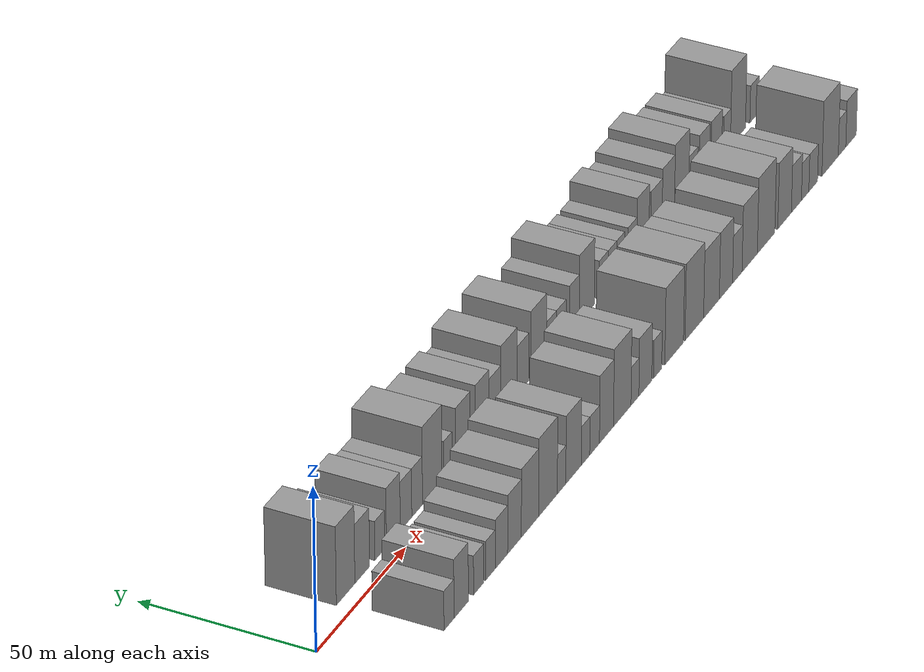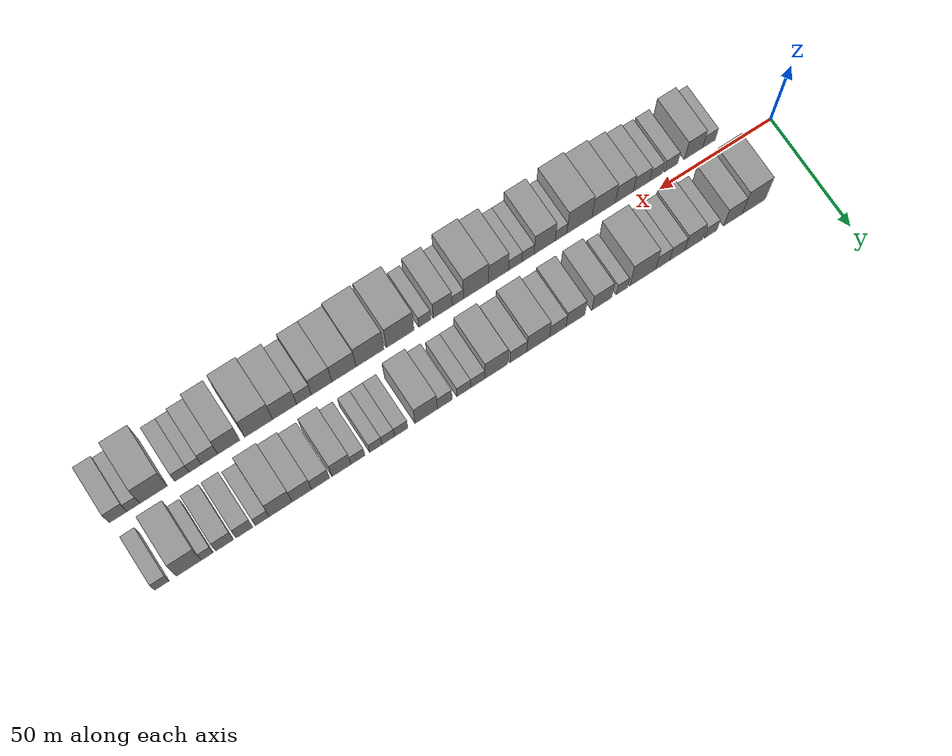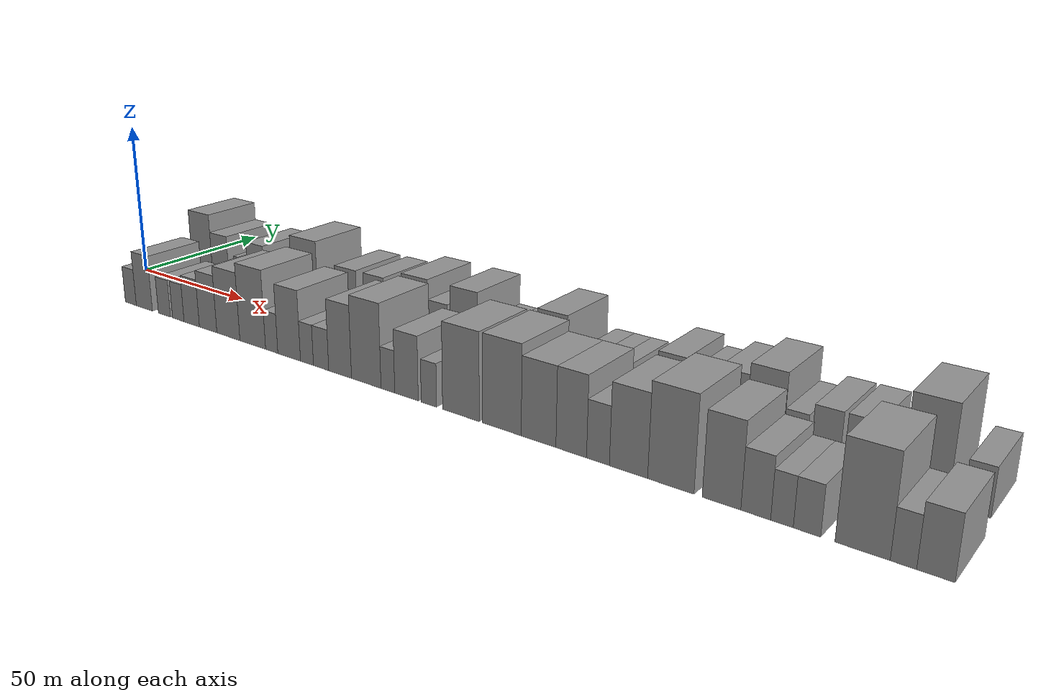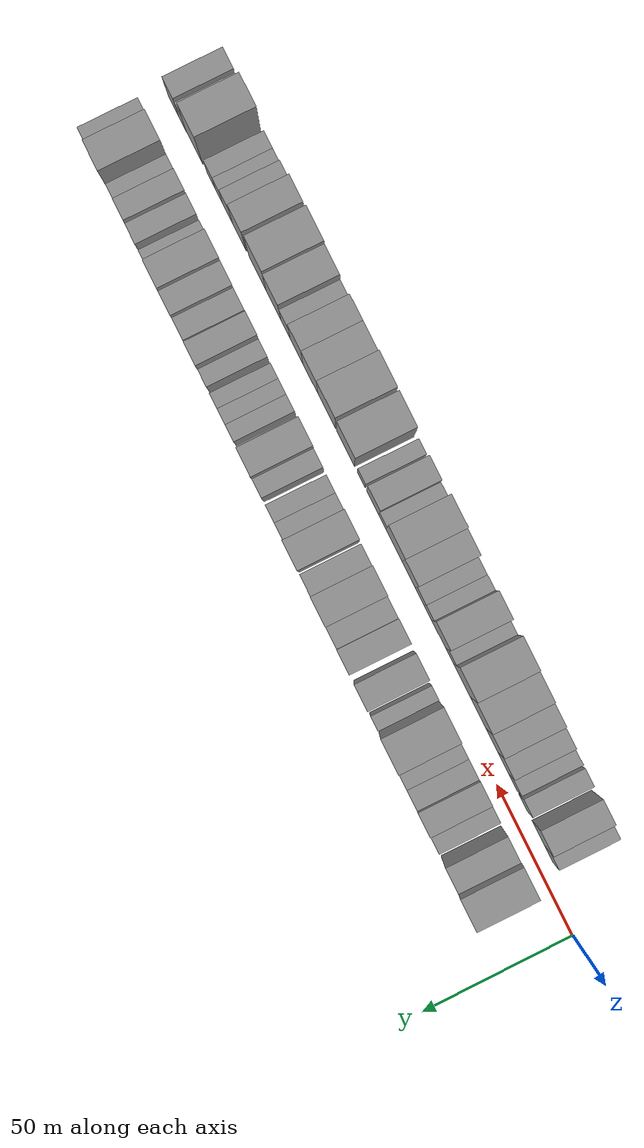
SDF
<sdf version="1.6">
 <world name="default">
  <scene>
   <sky><clouds><speed>12</speed></clouds></sky>
   <ambient>0.4 0.4 0.4 1</ambient>
   <background>0.7 0.7 0.7 1</background>
   <shadows>1</shadows>
  </scene>
  <gravity>0 0 -9.8066</gravity>
  <magnetic_field>6e-06 2.3e-05 -4.2e-05</magnetic_field>
  <physics default="0" name="default_physics" type="ode">
   <ode>
    <solver>
     <type>quick</type>
     <iters>10</iters>
     <sor>1.0</sor>
     <use_dynamic_moi_rescaling>0</use_dynamic_moi_rescaling>
    </solver>
    <constraints>
     <cfm>0</cfm>
     <erp>0.2</erp>
     <contact_max_correcting_vel>100</contact_max_correcting_vel>
     <contact_surface_layer>0.001</contact_surface_layer>
    </constraints>
   </ode>
   <max_step_size>0.004</max_step_size>
   <real_time_factor>1</real_time_factor>
   <real_time_update_rate>250</real_time_update_rate>
  </physics>
  <light name="sun" type="directional">
   <pose>0 0 10 0 0 0</pose>
   <diffuse>0.8 0.8 0.8 1</diffuse>
   <specular>0.2 0.2 0.2 1</specular>
   <attenuation>
    <range>1000</range>
    <constant>0.9</constant>
    <linear>0.01</linear>
    <quadratic>0.001</quadratic>
   </attenuation>
   <direction>-0.5 0.1 -0.9</direction>
  </light>
  <model name="building_1">
   <static>1</static>
   <pose>25.1746 14.5000 0 0.000000 0.000000 1.570796</pose>
   <link name="link">
    <pose>0 0 12.00 0 0 0</pose>
    <collision name="collision"><geometry><box><size>20.0000 10.3492 24.0000</size></box></geometry></collision>
    <visual name="visual">
     <cast_shadows>0</cast_shadows>
     <geometry><box><size>20.0000 10.3492 24.0000</size></box></geometry>
     <material>
      <script>
       <uri>model://grey_wall/materials/scripts</uri>
       <uri>model://grey_wall/materials/textures</uri>
       <name>vrc/grey_wall</name>
      </script>
     </material>
    </visual>
   </link>
  </model>
  <model name="building_2">
   <static>1</static>
   <pose>34.4824 14.5000 0 0.000000 0.000000 1.570796</pose>
   <link name="link">
    <pose>0 0 9.00 0 0 0</pose>
    <collision name="collision"><geometry><box><size>20.0000 8.2664 18.0000</size></box></geometry></collision>
    <visual name="visual">
     <cast_shadows>0</cast_shadows>
     <geometry><box><size>20.0000 8.2664 18.0000</size></box></geometry>
     <material>
      <script>
       <uri>model://grey_wall/materials/scripts</uri>
       <uri>model://grey_wall/materials/textures</uri>
       <name>vrc/grey_wall</name>
      </script>
     </material>
    </visual>
   </link>
  </model>
  <model name="building_3">
   <static>1</static>
   <pose>44.3704 14.5000 0 0.000000 0.000000 1.570796</pose>
   <link name="link">
    <pose>0 0 6.00 0 0 0</pose>
    <collision name="collision"><geometry><box><size>20.0000 5.5097 12.0000</size></box></geometry></collision>
    <visual name="visual">
     <cast_shadows>0</cast_shadows>
     <geometry><box><size>20.0000 5.5097 12.0000</size></box></geometry>
     <material>
      <script>
       <uri>model://grey_wall/materials/scripts</uri>
       <uri>model://grey_wall/materials/textures</uri>
       <name>vrc/grey_wall</name>
      </script>
     </material>
    </visual>
   </link>
  </model>
  <model name="building_4">
   <static>1</static>
   <pose>52.0816 14.5000 0 0.000000 0.000000 1.570796</pose>
   <link name="link">
    <pose>0 0 9.00 0 0 0</pose>
    <collision name="collision"><geometry><box><size>20.0000 7.9126 18.0000</size></box></geometry></collision>
    <visual name="visual">
     <cast_shadows>0</cast_shadows>
     <geometry><box><size>20.0000 7.9126 18.0000</size></box></geometry>
     <material>
      <script>
       <uri>model://grey_wall/materials/scripts</uri>
       <uri>model://grey_wall/materials/textures</uri>
       <name>vrc/grey_wall</name>
      </script>
     </material>
    </visual>
   </link>
  </model>
  <model name="building_5">
   <static>1</static>
   <pose>59.3654 14.5000 0 0.000000 0.000000 1.570796</pose>
   <link name="link">
    <pose>0 0 7.50 0 0 0</pose>
    <collision name="collision"><geometry><box><size>20.0000 6.6549 15.0000</size></box></geometry></collision>
    <visual name="visual">
     <cast_shadows>0</cast_shadows>
     <geometry><box><size>20.0000 6.6549 15.0000</size></box></geometry>
     <material>
      <script>
       <uri>model://grey_wall/materials/scripts</uri>
       <uri>model://grey_wall/materials/textures</uri>
       <name>vrc/grey_wall</name>
      </script>
     </material>
    </visual>
   </link>
  </model>
  <model name="building_6">
   <static>1</static>
   <pose>65.7682 14.5000 0 0.000000 0.000000 1.570796</pose>
   <link name="link">
    <pose>0 0 7.50 0 0 0</pose>
    <collision name="collision"><geometry><box><size>20.0000 6.1507 15.0000</size></box></geometry></collision>
    <visual name="visual">
     <cast_shadows>0</cast_shadows>
     <geometry><box><size>20.0000 6.1507 15.0000</size></box></geometry>
     <material>
      <script>
       <uri>model://grey_wall/materials/scripts</uri>
       <uri>model://grey_wall/materials/textures</uri>
       <name>vrc/grey_wall</name>
      </script>
     </material>
    </visual>
   </link>
  </model>
  <model name="building_7">
   <static>1</static>
   <pose>74.5268 14.5000 0 0.000000 0.000000 1.570796</pose>
   <link name="link">
    <pose>0 0 12.00 0 0 0</pose>
    <collision name="collision"><geometry><box><size>20.0000 11.3665 24.0000</size></box></geometry></collision>
    <visual name="visual">
     <cast_shadows>0</cast_shadows>
     <geometry><box><size>20.0000 11.3665 24.0000</size></box></geometry>
     <material>
      <script>
       <uri>model://grey_wall/materials/scripts</uri>
       <uri>model://grey_wall/materials/textures</uri>
       <name>vrc/grey_wall</name>
      </script>
     </material>
    </visual>
   </link>
  </model>
  <model name="building_8">
   <static>1</static>
   <pose>83.6589 14.5000 0 0.000000 0.000000 1.570796</pose>
   <link name="link">
    <pose>0 0 6.00 0 0 0</pose>
    <collision name="collision"><geometry><box><size>20.0000 4.8976 12.0000</size></box></geometry></collision>
    <visual name="visual">
     <cast_shadows>0</cast_shadows>
     <geometry><box><size>20.0000 4.8976 12.0000</size></box></geometry>
     <material>
      <script>
       <uri>model://grey_wall/materials/scripts</uri>
       <uri>model://grey_wall/materials/textures</uri>
       <name>vrc/grey_wall</name>
      </script>
     </material>
    </visual>
   </link>
  </model>
  <model name="building_9">
   <static>1</static>
   <pose>92.4639 14.5000 0 0.000000 0.000000 1.570796</pose>
   <link name="link">
    <pose>0 0 9.00 0 0 0</pose>
    <collision name="collision"><geometry><box><size>20.0000 8.7124 18.0000</size></box></geometry></collision>
    <visual name="visual">
     <cast_shadows>0</cast_shadows>
     <geometry><box><size>20.0000 8.7124 18.0000</size></box></geometry>
     <material>
      <script>
       <uri>model://grey_wall/materials/scripts</uri>
       <uri>model://grey_wall/materials/textures</uri>
       <name>vrc/grey_wall</name>
      </script>
     </material>
    </visual>
   </link>
  </model>
  <model name="building_10">
   <static>1</static>
   <pose>103.8794 14.5000 0 0.000000 0.000000 1.570796</pose>
   <link name="link">
    <pose>0 0 9.00 0 0 0</pose>
    <collision name="collision"><geometry><box><size>20.0000 8.1185 18.0000</size></box></geometry></collision>
    <visual name="visual">
     <cast_shadows>0</cast_shadows>
     <geometry><box><size>20.0000 8.1185 18.0000</size></box></geometry>
     <material>
      <script>
       <uri>model://grey_wall/materials/scripts</uri>
       <uri>model://grey_wall/materials/textures</uri>
       <name>vrc/grey_wall</name>
      </script>
     </material>
    </visual>
   </link>
  </model>
  <model name="building_11">
   <static>1</static>
   <pose>111.5253 14.5000 0 0.000000 0.000000 1.570796</pose>
   <link name="link">
    <pose>0 0 7.50 0 0 0</pose>
    <collision name="collision"><geometry><box><size>20.0000 7.1734 15.0000</size></box></geometry></collision>
    <visual name="visual">
     <cast_shadows>0</cast_shadows>
     <geometry><box><size>20.0000 7.1734 15.0000</size></box></geometry>
     <material>
      <script>
       <uri>model://grey_wall/materials/scripts</uri>
       <uri>model://grey_wall/materials/textures</uri>
       <name>vrc/grey_wall</name>
      </script>
     </material>
    </visual>
   </link>
  </model>
  <model name="building_12">
   <static>1</static>
   <pose>120.0198 14.5000 0 0.000000 0.000000 1.570796</pose>
   <link name="link">
    <pose>0 0 10.50 0 0 0</pose>
    <collision name="collision"><geometry><box><size>20.0000 9.8156 21.0000</size></box></geometry></collision>
    <visual name="visual">
     <cast_shadows>0</cast_shadows>
     <geometry><box><size>20.0000 9.8156 21.0000</size></box></geometry>
     <material>
      <script>
       <uri>model://grey_wall/materials/scripts</uri>
       <uri>model://grey_wall/materials/textures</uri>
       <name>vrc/grey_wall</name>
      </script>
     </material>
    </visual>
   </link>
  </model>
  <model name="building_13">
   <static>1</static>
   <pose>128.5343 14.5000 0 0.000000 0.000000 1.570796</pose>
   <link name="link">
    <pose>0 0 7.50 0 0 0</pose>
    <collision name="collision"><geometry><box><size>20.0000 7.2135 15.0000</size></box></geometry></collision>
    <visual name="visual">
     <cast_shadows>0</cast_shadows>
     <geometry><box><size>20.0000 7.2135 15.0000</size></box></geometry>
     <material>
      <script>
       <uri>model://grey_wall/materials/scripts</uri>
       <uri>model://grey_wall/materials/textures</uri>
       <name>vrc/grey_wall</name>
      </script>
     </material>
    </visual>
   </link>
  </model>
  <model name="building_14">
   <static>1</static>
   <pose>138.0408 14.5000 0 0.000000 0.000000 1.570796</pose>
   <link name="link">
    <pose>0 0 10.50 0 0 0</pose>
    <collision name="collision"><geometry><box><size>20.0000 9.7995 21.0000</size></box></geometry></collision>
    <visual name="visual">
     <cast_shadows>0</cast_shadows>
     <geometry><box><size>20.0000 9.7995 21.0000</size></box></geometry>
     <material>
      <script>
       <uri>model://grey_wall/materials/scripts</uri>
       <uri>model://grey_wall/materials/textures</uri>
       <name>vrc/grey_wall</name>
      </script>
     </material>
    </visual>
   </link>
  </model>
  <model name="building_15">
   <static>1</static>
   <pose>145.9293 14.5000 0 0.000000 0.000000 1.570796</pose>
   <link name="link">
    <pose>0 0 6.00 0 0 0</pose>
    <collision name="collision"><geometry><box><size>20.0000 5.9774 12.0000</size></box></geometry></collision>
    <visual name="visual">
     <cast_shadows>0</cast_shadows>
     <geometry><box><size>20.0000 5.9774 12.0000</size></box></geometry>
     <material>
      <script>
       <uri>model://grey_wall/materials/scripts</uri>
       <uri>model://grey_wall/materials/textures</uri>
       <name>vrc/grey_wall</name>
      </script>
     </material>
    </visual>
   </link>
  </model>
  <model name="building_16">
   <static>1</static>
   <pose>151.8795 14.5000 0 0.000000 0.000000 1.570796</pose>
   <link name="link">
    <pose>0 0 6.00 0 0 0</pose>
    <collision name="collision"><geometry><box><size>20.0000 5.9230 12.0000</size></box></geometry></collision>
    <visual name="visual">
     <cast_shadows>0</cast_shadows>
     <geometry><box><size>20.0000 5.9230 12.0000</size></box></geometry>
     <material>
      <script>
       <uri>model://grey_wall/materials/scripts</uri>
       <uri>model://grey_wall/materials/textures</uri>
       <name>vrc/grey_wall</name>
      </script>
     </material>
    </visual>
   </link>
  </model>
  <model name="building_17">
   <static>1</static>
   <pose>159.9639 14.5000 0 0.000000 0.000000 1.570796</pose>
   <link name="link">
    <pose>0 0 7.50 0 0 0</pose>
    <collision name="collision"><geometry><box><size>20.0000 6.2458 15.0000</size></box></geometry></collision>
    <visual name="visual">
     <cast_shadows>0</cast_shadows>
     <geometry><box><size>20.0000 6.2458 15.0000</size></box></geometry>
     <material>
      <script>
       <uri>model://grey_wall/materials/scripts</uri>
       <uri>model://grey_wall/materials/textures</uri>
       <name>vrc/grey_wall</name>
      </script>
     </material>
    </visual>
   </link>
  </model>
  <model name="building_18">
   <static>1</static>
   <pose>167.8384 14.5000 0 0.000000 0.000000 1.570796</pose>
   <link name="link">
    <pose>0 0 10.50 0 0 0</pose>
    <collision name="collision"><geometry><box><size>20.0000 9.5033 21.0000</size></box></geometry></collision>
    <visual name="visual">
     <cast_shadows>0</cast_shadows>
     <geometry><box><size>20.0000 9.5033 21.0000</size></box></geometry>
     <material>
      <script>
       <uri>model://grey_wall/materials/scripts</uri>
       <uri>model://grey_wall/materials/textures</uri>
       <name>vrc/grey_wall</name>
      </script>
     </material>
    </visual>
   </link>
  </model>
  <model name="building_19">
   <static>1</static>
   <pose>178.4240 14.5000 0 0.000000 0.000000 1.570796</pose>
   <link name="link">
    <pose>0 0 6.00 0 0 0</pose>
    <collision name="collision"><geometry><box><size>20.0000 5.6677 12.0000</size></box></geometry></collision>
    <visual name="visual">
     <cast_shadows>0</cast_shadows>
     <geometry><box><size>20.0000 5.6677 12.0000</size></box></geometry>
     <material>
      <script>
       <uri>model://grey_wall/materials/scripts</uri>
       <uri>model://grey_wall/materials/textures</uri>
       <name>vrc/grey_wall</name>
      </script>
     </material>
    </visual>
   </link>
  </model>
  <model name="building_20">
   <static>1</static>
   <pose>183.8757 14.5000 0 0.000000 0.000000 1.570796</pose>
   <link name="link">
    <pose>0 0 6.00 0 0 0</pose>
    <collision name="collision"><geometry><box><size>20.0000 5.2357 12.0000</size></box></geometry></collision>
    <visual name="visual">
     <cast_shadows>0</cast_shadows>
     <geometry><box><size>20.0000 5.2357 12.0000</size></box></geometry>
     <material>
      <script>
       <uri>model://grey_wall/materials/scripts</uri>
       <uri>model://grey_wall/materials/textures</uri>
       <name>vrc/grey_wall</name>
      </script>
     </material>
    </visual>
   </link>
  </model>
  <model name="building_21">
   <static>1</static>
   <pose>189.0594 14.5000 0 0.000000 0.000000 1.570796</pose>
   <link name="link">
    <pose>0 0 6.00 0 0 0</pose>
    <collision name="collision"><geometry><box><size>20.0000 5.1316 12.0000</size></box></geometry></collision>
    <visual name="visual">
     <cast_shadows>0</cast_shadows>
     <geometry><box><size>20.0000 5.1316 12.0000</size></box></geometry>
     <material>
      <script>
       <uri>model://grey_wall/materials/scripts</uri>
       <uri>model://grey_wall/materials/textures</uri>
       <name>vrc/grey_wall</name>
      </script>
     </material>
    </visual>
   </link>
  </model>
  <model name="building_22">
   <static>1</static>
   <pose>196.5684 14.5000 0 0.000000 0.000000 1.570796</pose>
   <link name="link">
    <pose>0 0 6.00 0 0 0</pose>
    <collision name="collision"><geometry><box><size>20.0000 5.8866 12.0000</size></box></geometry></collision>
    <visual name="visual">
     <cast_shadows>0</cast_shadows>
     <geometry><box><size>20.0000 5.8866 12.0000</size></box></geometry>
     <material>
      <script>
       <uri>model://grey_wall/materials/scripts</uri>
       <uri>model://grey_wall/materials/textures</uri>
       <name>vrc/grey_wall</name>
      </script>
     </material>
    </visual>
   </link>
  </model>
  <model name="building_23">
   <static>1</static>
   <pose>203.4384 14.5000 0 0.000000 0.000000 1.570796</pose>
   <link name="link">
    <pose>0 0 9.00 0 0 0</pose>
    <collision name="collision"><geometry><box><size>20.0000 7.8533 18.0000</size></box></geometry></collision>
    <visual name="visual">
     <cast_shadows>0</cast_shadows>
     <geometry><box><size>20.0000 7.8533 18.0000</size></box></geometry>
     <material>
      <script>
       <uri>model://grey_wall/materials/scripts</uri>
       <uri>model://grey_wall/materials/textures</uri>
       <name>vrc/grey_wall</name>
      </script>
     </material>
    </visual>
   </link>
  </model>
  <model name="building_24">
   <static>1</static>
   <pose>212.0950 14.5000 0 0.000000 0.000000 1.570796</pose>
   <link name="link">
    <pose>0 0 7.50 0 0 0</pose>
    <collision name="collision"><geometry><box><size>20.0000 7.4600 15.0000</size></box></geometry></collision>
    <visual name="visual">
     <cast_shadows>0</cast_shadows>
     <geometry><box><size>20.0000 7.4600 15.0000</size></box></geometry>
     <material>
      <script>
       <uri>model://grey_wall/materials/scripts</uri>
       <uri>model://grey_wall/materials/textures</uri>
       <name>vrc/grey_wall</name>
      </script>
     </material>
    </visual>
   </link>
  </model>
  <model name="building_25">
   <static>1</static>
   <pose>219.8678 14.5000 0 0.000000 0.000000 1.570796</pose>
   <link name="link">
    <pose>0 0 9.00 0 0 0</pose>
    <collision name="collision"><geometry><box><size>20.0000 8.0856 18.0000</size></box></geometry></collision>
    <visual name="visual">
     <cast_shadows>0</cast_shadows>
     <geometry><box><size>20.0000 8.0856 18.0000</size></box></geometry>
     <material>
      <script>
       <uri>model://grey_wall/materials/scripts</uri>
       <uri>model://grey_wall/materials/textures</uri>
       <name>vrc/grey_wall</name>
      </script>
     </material>
    </visual>
   </link>
  </model>
  <model name="building_26">
   <static>1</static>
   <pose>228.6198 14.5000 0 0.000000 0.000000 1.570796</pose>
   <link name="link">
    <pose>0 0 10.50 0 0 0</pose>
    <collision name="collision"><geometry><box><size>20.0000 9.4183 21.0000</size></box></geometry></collision>
    <visual name="visual">
     <cast_shadows>0</cast_shadows>
     <geometry><box><size>20.0000 9.4183 21.0000</size></box></geometry>
     <material>
      <script>
       <uri>model://grey_wall/materials/scripts</uri>
       <uri>model://grey_wall/materials/textures</uri>
       <name>vrc/grey_wall</name>
      </script>
     </material>
    </visual>
   </link>
  </model>
  <model name="building_27">
   <static>1</static>
   <pose>236.1956 14.5000 0 0.000000 0.000000 1.570796</pose>
   <link name="link">
    <pose>0 0 6.00 0 0 0</pose>
    <collision name="collision"><geometry><box><size>20.0000 5.7333 12.0000</size></box></geometry></collision>
    <visual name="visual">
     <cast_shadows>0</cast_shadows>
     <geometry><box><size>20.0000 5.7333 12.0000</size></box></geometry>
     <material>
      <script>
       <uri>model://grey_wall/materials/scripts</uri>
       <uri>model://grey_wall/materials/textures</uri>
       <name>vrc/grey_wall</name>
      </script>
     </material>
    </visual>
   </link>
  </model>
  <model name="building_28">
   <static>1</static>
   <pose>243.5066 14.5000 0 0.000000 0.000000 1.570796</pose>
   <link name="link">
    <pose>0 0 7.50 0 0 0</pose>
    <collision name="collision"><geometry><box><size>20.0000 6.8887 15.0000</size></box></geometry></collision>
    <visual name="visual">
     <cast_shadows>0</cast_shadows>
     <geometry><box><size>20.0000 6.8887 15.0000</size></box></geometry>
     <material>
      <script>
       <uri>model://grey_wall/materials/scripts</uri>
       <uri>model://grey_wall/materials/textures</uri>
       <name>vrc/grey_wall</name>
      </script>
     </material>
    </visual>
   </link>
  </model>
  <model name="building_29">
   <static>1</static>
   <pose>251.5975 14.5000 0 0.000000 0.000000 1.570796</pose>
   <link name="link">
    <pose>0 0 7.50 0 0 0</pose>
    <collision name="collision"><geometry><box><size>20.0000 7.2932 15.0000</size></box></geometry></collision>
    <visual name="visual">
     <cast_shadows>0</cast_shadows>
     <geometry><box><size>20.0000 7.2932 15.0000</size></box></geometry>
     <material>
      <script>
       <uri>model://grey_wall/materials/scripts</uri>
       <uri>model://grey_wall/materials/textures</uri>
       <name>vrc/grey_wall</name>
      </script>
     </material>
    </visual>
   </link>
  </model>
  <model name="building_30">
   <static>1</static>
   <pose>258.6522 14.5000 0 0.000000 0.000000 1.570796</pose>
   <link name="link">
    <pose>0 0 6.00 0 0 0</pose>
    <collision name="collision"><geometry><box><size>20.0000 4.8161 12.0000</size></box></geometry></collision>
    <visual name="visual">
     <cast_shadows>0</cast_shadows>
     <geometry><box><size>20.0000 4.8161 12.0000</size></box></geometry>
     <material>
      <script>
       <uri>model://grey_wall/materials/scripts</uri>
       <uri>model://grey_wall/materials/textures</uri>
       <name>vrc/grey_wall</name>
      </script>
     </material>
    </visual>
   </link>
  </model>
  <model name="building_31">
   <static>1</static>
   <pose>266.1332 14.5000 0 0.000000 0.000000 1.570796</pose>
   <link name="link">
    <pose>0 0 12.00 0 0 0</pose>
    <collision name="collision"><geometry><box><size>20.0000 10.1458 24.0000</size></box></geometry></collision>
    <visual name="visual">
     <cast_shadows>0</cast_shadows>
     <geometry><box><size>20.0000 10.1458 24.0000</size></box></geometry>
     <material>
      <script>
       <uri>model://grey_wall/materials/scripts</uri>
       <uri>model://grey_wall/materials/textures</uri>
       <name>vrc/grey_wall</name>
      </script>
     </material>
    </visual>
   </link>
  </model>
  <model name="building_32">
   <static>1</static>
   <pose>277.1185 14.5000 0 0.000000 0.000000 1.570796</pose>
   <link name="link">
    <pose>0 0 6.00 0 0 0</pose>
    <collision name="collision"><geometry><box><size>20.0000 5.8248 12.0000</size></box></geometry></collision>
    <visual name="visual">
     <cast_shadows>0</cast_shadows>
     <geometry><box><size>20.0000 5.8248 12.0000</size></box></geometry>
     <material>
      <script>
       <uri>model://grey_wall/materials/scripts</uri>
       <uri>model://grey_wall/materials/textures</uri>
       <name>vrc/grey_wall</name>
      </script>
     </material>
    </visual>
   </link>
  </model>
  <model name="building_33">
   <static>1</static>
   <pose>24.8295 -14.5000 0 0.000000 0.000000 1.570796</pose>
   <link name="link">
    <pose>0 0 6.00 0 0 0</pose>
    <collision name="collision"><geometry><box><size>20.0000 5.6591 12.0000</size></box></geometry></collision>
    <visual name="visual">
     <cast_shadows>0</cast_shadows>
     <geometry><box><size>20.0000 5.6591 12.0000</size></box></geometry>
     <material>
      <script>
       <uri>model://grey_wall/materials/scripts</uri>
       <uri>model://grey_wall/materials/textures</uri>
       <name>vrc/grey_wall</name>
      </script>
     </material>
    </visual>
   </link>
  </model>
  <model name="building_34">
   <static>1</static>
   <pose>31.7706 -14.5000 0 0.000000 0.000000 1.570796</pose>
   <link name="link">
    <pose>0 0 9.00 0 0 0</pose>
    <collision name="collision"><geometry><box><size>20.0000 8.2231 18.0000</size></box></geometry></collision>
    <visual name="visual">
     <cast_shadows>0</cast_shadows>
     <geometry><box><size>20.0000 8.2231 18.0000</size></box></geometry>
     <material>
      <script>
       <uri>model://grey_wall/materials/scripts</uri>
       <uri>model://grey_wall/materials/textures</uri>
       <name>vrc/grey_wall</name>
      </script>
     </material>
    </visual>
   </link>
  </model>
  <model name="building_35">
   <static>1</static>
   <pose>41.8586 -14.5000 0 0.000000 0.000000 1.570796</pose>
   <link name="link">
    <pose>0 0 6.00 0 0 0</pose>
    <collision name="collision"><geometry><box><size>20.0000 5.9528 12.0000</size></box></geometry></collision>
    <visual name="visual">
     <cast_shadows>0</cast_shadows>
     <geometry><box><size>20.0000 5.9528 12.0000</size></box></geometry>
     <material>
      <script>
       <uri>model://grey_wall/materials/scripts</uri>
       <uri>model://grey_wall/materials/textures</uri>
       <name>vrc/grey_wall</name>
      </script>
     </material>
    </visual>
   </link>
  </model>
  <model name="building_36">
   <static>1</static>
   <pose>48.6147 -14.5000 0 0.000000 0.000000 1.570796</pose>
   <link name="link">
    <pose>0 0 6.00 0 0 0</pose>
    <collision name="collision"><geometry><box><size>20.0000 5.5594 12.0000</size></box></geometry></collision>
    <visual name="visual">
     <cast_shadows>0</cast_shadows>
     <geometry><box><size>20.0000 5.5594 12.0000</size></box></geometry>
     <material>
      <script>
       <uri>model://grey_wall/materials/scripts</uri>
       <uri>model://grey_wall/materials/textures</uri>
       <name>vrc/grey_wall</name>
      </script>
     </material>
    </visual>
   </link>
  </model>
  <model name="building_37">
   <static>1</static>
   <pose>55.0255 -14.5000 0 0.000000 0.000000 1.570796</pose>
   <link name="link">
    <pose>0 0 7.50 0 0 0</pose>
    <collision name="collision"><geometry><box><size>20.0000 7.2622 15.0000</size></box></geometry></collision>
    <visual name="visual">
     <cast_shadows>0</cast_shadows>
     <geometry><box><size>20.0000 7.2622 15.0000</size></box></geometry>
     <material>
      <script>
       <uri>model://grey_wall/materials/scripts</uri>
       <uri>model://grey_wall/materials/textures</uri>
       <name>vrc/grey_wall</name>
      </script>
     </material>
    </visual>
   </link>
  </model>
  <model name="building_38">
   <static>1</static>
   <pose>62.6842 -14.5000 0 0.000000 0.000000 1.570796</pose>
   <link name="link">
    <pose>0 0 9.00 0 0 0</pose>
    <collision name="collision"><geometry><box><size>20.0000 8.0551 18.0000</size></box></geometry></collision>
    <visual name="visual">
     <cast_shadows>0</cast_shadows>
     <geometry><box><size>20.0000 8.0551 18.0000</size></box></geometry>
     <material>
      <script>
       <uri>model://grey_wall/materials/scripts</uri>
       <uri>model://grey_wall/materials/textures</uri>
       <name>vrc/grey_wall</name>
      </script>
     </material>
    </visual>
   </link>
  </model>
  <model name="building_39">
   <static>1</static>
   <pose>71.8585 -14.5000 0 0.000000 0.000000 1.570796</pose>
   <link name="link">
    <pose>0 0 10.50 0 0 0</pose>
    <collision name="collision"><geometry><box><size>20.0000 10.2935 21.0000</size></box></geometry></collision>
    <visual name="visual">
     <cast_shadows>0</cast_shadows>
     <geometry><box><size>20.0000 10.2935 21.0000</size></box></geometry>
     <material>
      <script>
       <uri>model://grey_wall/materials/scripts</uri>
       <uri>model://grey_wall/materials/textures</uri>
       <name>vrc/grey_wall</name>
      </script>
     </material>
    </visual>
   </link>
  </model>
  <model name="building_40">
   <static>1</static>
   <pose>82.5475 -14.5000 0 0.000000 0.000000 1.570796</pose>
   <link name="link">
    <pose>0 0 12.00 0 0 0</pose>
    <collision name="collision"><geometry><box><size>20.0000 11.0843 24.0000</size></box></geometry></collision>
    <visual name="visual">
     <cast_shadows>0</cast_shadows>
     <geometry><box><size>20.0000 11.0843 24.0000</size></box></geometry>
     <material>
      <script>
       <uri>model://grey_wall/materials/scripts</uri>
       <uri>model://grey_wall/materials/textures</uri>
       <name>vrc/grey_wall</name>
      </script>
     </material>
    </visual>
   </link>
  </model>
  <model name="building_41">
   <static>1</static>
   <pose>90.6460 -14.5000 0 0.000000 0.000000 1.570796</pose>
   <link name="link">
    <pose>0 0 6.00 0 0 0</pose>
    <collision name="collision"><geometry><box><size>20.0000 5.1128 12.0000</size></box></geometry></collision>
    <visual name="visual">
     <cast_shadows>0</cast_shadows>
     <geometry><box><size>20.0000 5.1128 12.0000</size></box></geometry>
     <material>
      <script>
       <uri>model://grey_wall/materials/scripts</uri>
       <uri>model://grey_wall/materials/textures</uri>
       <name>vrc/grey_wall</name>
      </script>
     </material>
    </visual>
   </link>
  </model>
  <model name="building_42">
   <static>1</static>
   <pose>97.8314 -14.5000 0 0.000000 0.000000 1.570796</pose>
   <link name="link">
    <pose>0 0 10.50 0 0 0</pose>
    <collision name="collision"><geometry><box><size>20.0000 9.2579 21.0000</size></box></geometry></collision>
    <visual name="visual">
     <cast_shadows>0</cast_shadows>
     <geometry><box><size>20.0000 9.2579 21.0000</size></box></geometry>
     <material>
      <script>
       <uri>model://grey_wall/materials/scripts</uri>
       <uri>model://grey_wall/materials/textures</uri>
       <name>vrc/grey_wall</name>
      </script>
     </material>
    </visual>
   </link>
  </model>
  <model name="building_43">
   <static>1</static>
   <pose>105.0387 -14.5000 0 0.000000 0.000000 1.570796</pose>
   <link name="link">
    <pose>0 0 6.00 0 0 0</pose>
    <collision name="collision"><geometry><box><size>20.0000 5.1569 12.0000</size></box></geometry></collision>
    <visual name="visual">
     <cast_shadows>0</cast_shadows>
     <geometry><box><size>20.0000 5.1569 12.0000</size></box></geometry>
     <material>
      <script>
       <uri>model://grey_wall/materials/scripts</uri>
       <uri>model://grey_wall/materials/textures</uri>
       <name>vrc/grey_wall</name>
      </script>
     </material>
    </visual>
   </link>
  </model>
  <model name="building_44">
   <static>1</static>
   <pose>110.5969 -14.5000 0 0.000000 0.000000 1.570796</pose>
   <link name="link">
    <pose>0 0 6.00 0 0 0</pose>
    <collision name="collision"><geometry><box><size>20.0000 5.9595 12.0000</size></box></geometry></collision>
    <visual name="visual">
     <cast_shadows>0</cast_shadows>
     <geometry><box><size>20.0000 5.9595 12.0000</size></box></geometry>
     <material>
      <script>
       <uri>model://grey_wall/materials/scripts</uri>
       <uri>model://grey_wall/materials/textures</uri>
       <name>vrc/grey_wall</name>
      </script>
     </material>
    </visual>
   </link>
  </model>
  <model name="building_45">
   <static>1</static>
   <pose>117.9034 -14.5000 0 0.000000 0.000000 1.570796</pose>
   <link name="link">
    <pose>0 0 10.50 0 0 0</pose>
    <collision name="collision"><geometry><box><size>20.0000 8.6535 21.0000</size></box></geometry></collision>
    <visual name="visual">
     <cast_shadows>0</cast_shadows>
     <geometry><box><size>20.0000 8.6535 21.0000</size></box></geometry>
     <material>
      <script>
       <uri>model://grey_wall/materials/scripts</uri>
       <uri>model://grey_wall/materials/textures</uri>
       <name>vrc/grey_wall</name>
      </script>
     </material>
    </visual>
   </link>
  </model>
  <model name="building_46">
   <static>1</static>
   <pose>127.6342 -14.5000 0 0.000000 0.000000 1.570796</pose>
   <link name="link">
    <pose>0 0 12.00 0 0 0</pose>
    <collision name="collision"><geometry><box><size>20.0000 10.8082 24.0000</size></box></geometry></collision>
    <visual name="visual">
     <cast_shadows>0</cast_shadows>
     <geometry><box><size>20.0000 10.8082 24.0000</size></box></geometry>
     <material>
      <script>
       <uri>model://grey_wall/materials/scripts</uri>
       <uri>model://grey_wall/materials/textures</uri>
       <name>vrc/grey_wall</name>
      </script>
     </material>
    </visual>
   </link>
  </model>
  <model name="building_47">
   <static>1</static>
   <pose>135.4811 -14.5000 0 0.000000 0.000000 1.570796</pose>
   <link name="link">
    <pose>0 0 6.00 0 0 0</pose>
    <collision name="collision"><geometry><box><size>20.0000 4.8857 12.0000</size></box></geometry></collision>
    <visual name="visual">
     <cast_shadows>0</cast_shadows>
     <geometry><box><size>20.0000 4.8857 12.0000</size></box></geometry>
     <material>
      <script>
       <uri>model://grey_wall/materials/scripts</uri>
       <uri>model://grey_wall/materials/textures</uri>
       <name>vrc/grey_wall</name>
      </script>
     </material>
    </visual>
   </link>
  </model>
  <model name="building_48">
   <static>1</static>
   <pose>141.9986 -14.5000 0 0.000000 0.000000 1.570796</pose>
   <link name="link">
    <pose>0 0 9.00 0 0 0</pose>
    <collision name="collision"><geometry><box><size>20.0000 8.1493 18.0000</size></box></geometry></collision>
    <visual name="visual">
     <cast_shadows>0</cast_shadows>
     <geometry><box><size>20.0000 8.1493 18.0000</size></box></geometry>
     <material>
      <script>
       <uri>model://grey_wall/materials/scripts</uri>
       <uri>model://grey_wall/materials/textures</uri>
       <name>vrc/grey_wall</name>
      </script>
     </material>
    </visual>
   </link>
  </model>
  <model name="building_49">
   <static>1</static>
   <pose>149.6583 -14.5000 0 0.000000 0.000000 1.570796</pose>
   <link name="link">
    <pose>0 0 6.00 0 0 0</pose>
    <collision name="collision"><geometry><box><size>20.0000 5.1701 12.0000</size></box></geometry></collision>
    <visual name="visual">
     <cast_shadows>0</cast_shadows>
     <geometry><box><size>20.0000 5.1701 12.0000</size></box></geometry>
     <material>
      <script>
       <uri>model://grey_wall/materials/scripts</uri>
       <uri>model://grey_wall/materials/textures</uri>
       <name>vrc/grey_wall</name>
      </script>
     </material>
    </visual>
   </link>
  </model>
  <model name="building_50">
   <static>1</static>
   <pose>160.1552 -14.5000 0 0.000000 0.000000 1.570796</pose>
   <link name="link">
    <pose>0 0 12.00 0 0 0</pose>
    <collision name="collision"><geometry><box><size>20.0000 11.8237 24.0000</size></box></geometry></collision>
    <visual name="visual">
     <cast_shadows>0</cast_shadows>
     <geometry><box><size>20.0000 11.8237 24.0000</size></box></geometry>
     <material>
      <script>
       <uri>model://grey_wall/materials/scripts</uri>
       <uri>model://grey_wall/materials/textures</uri>
       <name>vrc/grey_wall</name>
      </script>
     </material>
    </visual>
   </link>
  </model>
  <model name="building_51">
   <static>1</static>
   <pose>173.0118 -14.5000 0 0.000000 0.000000 1.570796</pose>
   <link name="link">
    <pose>0 0 12.00 0 0 0</pose>
    <collision name="collision"><geometry><box><size>20.0000 11.8895 24.0000</size></box></geometry></collision>
    <visual name="visual">
     <cast_shadows>0</cast_shadows>
     <geometry><box><size>20.0000 11.8895 24.0000</size></box></geometry>
     <material>
      <script>
       <uri>model://grey_wall/materials/scripts</uri>
       <uri>model://grey_wall/materials/textures</uri>
       <name>vrc/grey_wall</name>
      </script>
     </material>
    </visual>
   </link>
  </model>
  <model name="building_52">
   <static>1</static>
   <pose>184.0375 -14.5000 0 0.000000 0.000000 1.570796</pose>
   <link name="link">
    <pose>0 0 10.50 0 0 0</pose>
    <collision name="collision"><geometry><box><size>20.0000 10.1620 21.0000</size></box></geometry></collision>
    <visual name="visual">
     <cast_shadows>0</cast_shadows>
     <geometry><box><size>20.0000 10.1620 21.0000</size></box></geometry>
     <material>
      <script>
       <uri>model://grey_wall/materials/scripts</uri>
       <uri>model://grey_wall/materials/textures</uri>
       <name>vrc/grey_wall</name>
      </script>
     </material>
    </visual>
   </link>
  </model>
  <model name="building_53">
   <static>1</static>
   <pose>193.4255 -14.5000 0 0.000000 0.000000 1.570796</pose>
   <link name="link">
    <pose>0 0 10.50 0 0 0</pose>
    <collision name="collision"><geometry><box><size>20.0000 8.6140 21.0000</size></box></geometry></collision>
    <visual name="visual">
     <cast_shadows>0</cast_shadows>
     <geometry><box><size>20.0000 8.6140 21.0000</size></box></geometry>
     <material>
      <script>
       <uri>model://grey_wall/materials/scripts</uri>
       <uri>model://grey_wall/materials/textures</uri>
       <name>vrc/grey_wall</name>
      </script>
     </material>
    </visual>
   </link>
  </model>
  <model name="building_54">
   <static>1</static>
   <pose>200.8437 -14.5000 0 0.000000 0.000000 1.570796</pose>
   <link name="link">
    <pose>0 0 7.50 0 0 0</pose>
    <collision name="collision"><geometry><box><size>20.0000 6.2224 15.0000</size></box></geometry></collision>
    <visual name="visual">
     <cast_shadows>0</cast_shadows>
     <geometry><box><size>20.0000 6.2224 15.0000</size></box></geometry>
     <material>
      <script>
       <uri>model://grey_wall/materials/scripts</uri>
       <uri>model://grey_wall/materials/textures</uri>
       <name>vrc/grey_wall</name>
      </script>
     </material>
    </visual>
   </link>
  </model>
  <model name="building_55">
   <static>1</static>
   <pose>208.9846 -14.5000 0 0.000000 0.000000 1.570796</pose>
   <link name="link">
    <pose>0 0 10.50 0 0 0</pose>
    <collision name="collision"><geometry><box><size>20.0000 10.0593 21.0000</size></box></geometry></collision>
    <visual name="visual">
     <cast_shadows>0</cast_shadows>
     <geometry><box><size>20.0000 10.0593 21.0000</size></box></geometry>
     <material>
      <script>
       <uri>model://grey_wall/materials/scripts</uri>
       <uri>model://grey_wall/materials/textures</uri>
       <name>vrc/grey_wall</name>
      </script>
     </material>
    </visual>
   </link>
  </model>
  <model name="building_56">
   <static>1</static>
   <pose>219.8255 -14.5000 0 0.000000 0.000000 1.570796</pose>
   <link name="link">
    <pose>0 0 12.00 0 0 0</pose>
    <collision name="collision"><geometry><box><size>20.0000 11.6225 24.0000</size></box></geometry></collision>
    <visual name="visual">
     <cast_shadows>0</cast_shadows>
     <geometry><box><size>20.0000 11.6225 24.0000</size></box></geometry>
     <material>
      <script>
       <uri>model://grey_wall/materials/scripts</uri>
       <uri>model://grey_wall/materials/textures</uri>
       <name>vrc/grey_wall</name>
      </script>
     </material>
    </visual>
   </link>
  </model>
  <model name="building_57">
   <static>1</static>
   <pose>232.1982 -14.5000 0 0.000000 0.000000 1.570796</pose>
   <link name="link">
    <pose>0 0 10.50 0 0 0</pose>
    <collision name="collision"><geometry><box><size>20.0000 9.1229 21.0000</size></box></geometry></collision>
    <visual name="visual">
     <cast_shadows>0</cast_shadows>
     <geometry><box><size>20.0000 9.1229 21.0000</size></box></geometry>
     <material>
      <script>
       <uri>model://grey_wall/materials/scripts</uri>
       <uri>model://grey_wall/materials/textures</uri>
       <name>vrc/grey_wall</name>
      </script>
     </material>
    </visual>
   </link>
  </model>
  <model name="building_58">
   <static>1</static>
   <pose>240.1542 -14.5000 0 0.000000 0.000000 1.570796</pose>
   <link name="link">
    <pose>0 0 7.50 0 0 0</pose>
    <collision name="collision"><geometry><box><size>20.0000 6.7891 15.0000</size></box></geometry></collision>
    <visual name="visual">
     <cast_shadows>0</cast_shadows>
     <geometry><box><size>20.0000 6.7891 15.0000</size></box></geometry>
     <material>
      <script>
       <uri>model://grey_wall/materials/scripts</uri>
       <uri>model://grey_wall/materials/textures</uri>
       <name>vrc/grey_wall</name>
      </script>
     </material>
    </visual>
   </link>
  </model>
  <model name="building_59">
   <static>1</static>
   <pose>246.0574 -14.5000 0 0.000000 0.000000 1.570796</pose>
   <link name="link">
    <pose>0 0 6.00 0 0 0</pose>
    <collision name="collision"><geometry><box><size>20.0000 5.0175 12.0000</size></box></geometry></collision>
    <visual name="visual">
     <cast_shadows>0</cast_shadows>
     <geometry><box><size>20.0000 5.0175 12.0000</size></box></geometry>
     <material>
      <script>
       <uri>model://grey_wall/materials/scripts</uri>
       <uri>model://grey_wall/materials/textures</uri>
       <name>vrc/grey_wall</name>
      </script>
     </material>
    </visual>
   </link>
  </model>
  <model name="building_60">
   <static>1</static>
   <pose>251.5301 -14.5000 0 0.000000 0.000000 1.570796</pose>
   <link name="link">
    <pose>0 0 6.00 0 0 0</pose>
    <collision name="collision"><geometry><box><size>20.0000 5.9278 12.0000</size></box></geometry></collision>
    <visual name="visual">
     <cast_shadows>0</cast_shadows>
     <geometry><box><size>20.0000 5.9278 12.0000</size></box></geometry>
     <material>
      <script>
       <uri>model://grey_wall/materials/scripts</uri>
       <uri>model://grey_wall/materials/textures</uri>
       <name>vrc/grey_wall</name>
      </script>
     </material>
    </visual>
   </link>
  </model>
  <model name="building_61">
   <static>1</static>
   <pose>263.1207 -14.5000 0 0.000000 0.000000 1.570796</pose>
   <link name="link">
    <pose>0 0 12.00 0 0 0</pose>
    <collision name="collision"><geometry><box><size>20.0000 11.2536 24.0000</size></box></geometry></collision>
    <visual name="visual">
     <cast_shadows>0</cast_shadows>
     <geometry><box><size>20.0000 11.2536 24.0000</size></box></geometry>
     <material>
      <script>
       <uri>model://grey_wall/materials/scripts</uri>
       <uri>model://grey_wall/materials/textures</uri>
       <name>vrc/grey_wall</name>
      </script>
     </material>
    </visual>
   </link>
  </model>
  <model name="building_62">
   <static>1</static>
   <pose>271.3280 -14.5000 0 0.000000 0.000000 1.570796</pose>
   <link name="link">
    <pose>0 0 6.00 0 0 0</pose>
    <collision name="collision"><geometry><box><size>20.0000 5.1610 12.0000</size></box></geometry></collision>
    <visual name="visual">
     <cast_shadows>0</cast_shadows>
     <geometry><box><size>20.0000 5.1610 12.0000</size></box></geometry>
     <material>
      <script>
       <uri>model://grey_wall/materials/scripts</uri>
       <uri>model://grey_wall/materials/textures</uri>
       <name>vrc/grey_wall</name>
      </script>
     </material>
    </visual>
   </link>
  </model>
  <model name="building_63">
   <static>1</static>
   <pose>277.5551 -14.5000 0 0.000000 0.000000 1.570796</pose>
   <link name="link">
    <pose>0 0 7.50 0 0 0</pose>
    <collision name="collision"><geometry><box><size>20.0000 7.2932 15.0000</size></box></geometry></collision>
    <visual name="visual">
     <cast_shadows>0</cast_shadows>
     <geometry><box><size>20.0000 7.2932 15.0000</size></box></geometry>
     <material>
      <script>
       <uri>model://grey_wall/materials/scripts</uri>
       <uri>model://grey_wall/materials/textures</uri>
       <name>vrc/grey_wall</name>
      </script>
     </material>
    </visual>
   </link>
  </model>
 </world>
</sdf>
